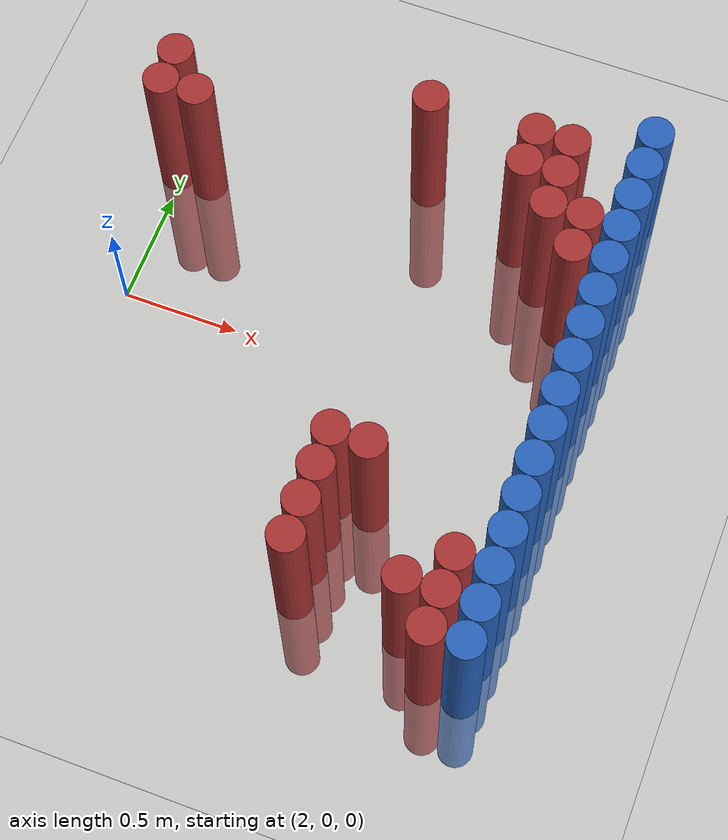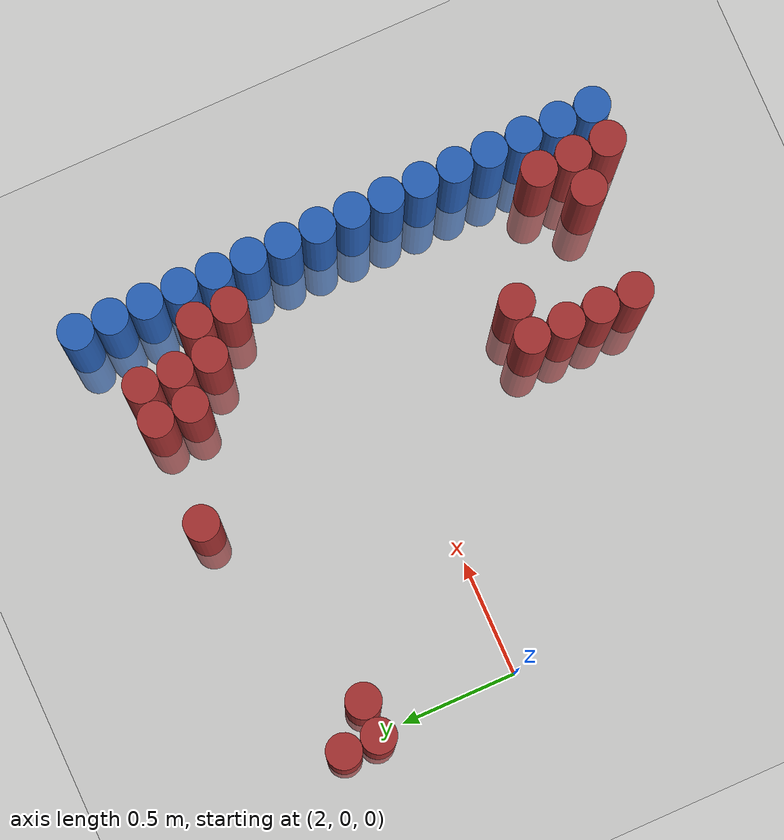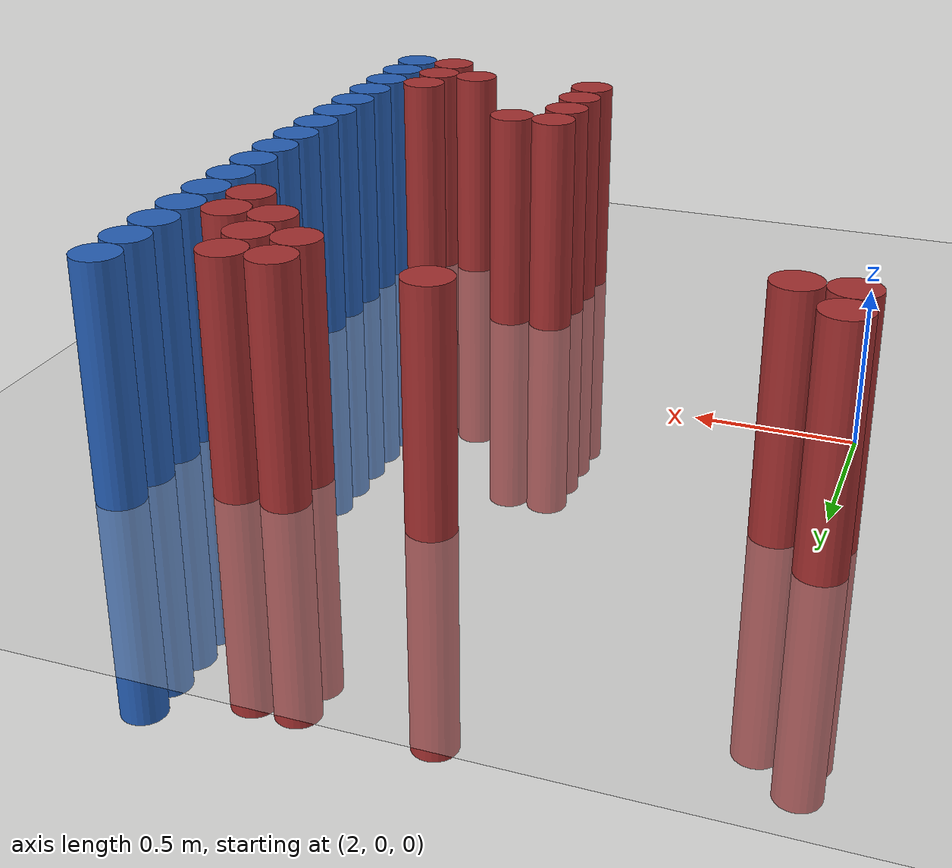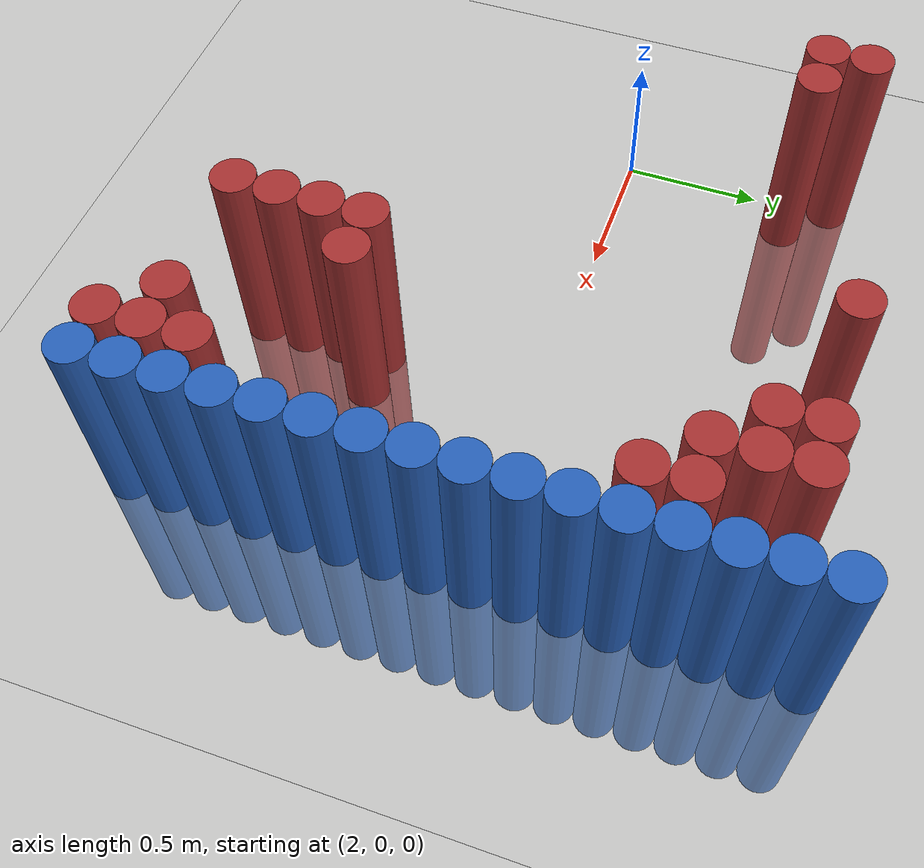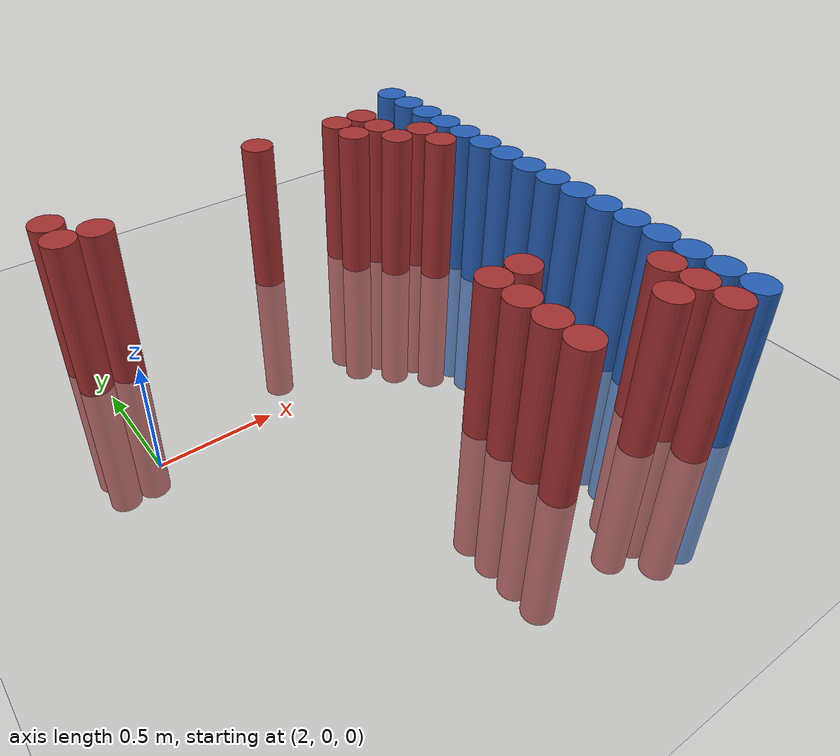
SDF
<sdf version="1.6">
 <world name="default">
  <model name="ground_plane">
   <static>1</static>
   <link name="link">
    <collision name="collision">
     <geometry><plane><normal>0 0 1</normal><size>100 100</size></plane></geometry>
     <surface><friction><ode><mu>100</mu><mu2>50</mu2></ode></friction></surface>
    </collision>
    <visual name="visual">
     <cast_shadows>0</cast_shadows>
     <geometry><plane><normal>0 0 1</normal><size>100 100</size></plane></geometry>
     <material>
      <script><uri>file://media/materials/scripts/gazebo.material</uri><name>Gazebo/Grey</name></script>
     </material>
    </visual>
   </link>
  </model>
  <model name="unit_cylinder_98">
   <static>1</static>
   <pose>3.925000 -1.175000 0.000000 0.000000 0.000000 0.000000</pose>
   <link name="link">
    <inertial>
     <mass>1</mass>
     <inertia><ixx>0.145833</ixx><ixy>0</ixy><ixz>0</ixz><iyy>0.145833</iyy><iyz>0</iyz><izz>0.125</izz></inertia>
    </inertial>
    <collision name="collision">
     <geometry><cylinder><radius>0.075000</radius><length>1.5</length></cylinder></geometry>
    </collision>
    <visual name="visual">
     <geometry><cylinder><radius>0.075000</radius><length>1.5</length></cylinder></geometry>
     <material>
      <ambient>0.152000 0.379000 0.720000 1</ambient>
      <diffuse>0.152000 0.379000 0.720000 1</diffuse>
     </material>
     <material>
      <script><name>Gazebo/Grey</name><uri>file://media/materials/scripts/gazebo.material</uri></script>
     </material>
    </visual>
   </link>
  </model>
  <model name="unit_cylinder_100">
   <static>1</static>
   <pose>3.925000 -1.025000 0.000000 0.000000 0.000000 0.000000</pose>
   <link name="link">
    <inertial>
     <mass>1</mass>
     <inertia><ixx>0.145833</ixx><ixy>0</ixy><ixz>0</ixz><iyy>0.145833</iyy><iyz>0</iyz><izz>0.125</izz></inertia>
    </inertial>
    <collision name="collision">
     <geometry><cylinder><radius>0.075000</radius><length>1.5</length></cylinder></geometry>
    </collision>
    <visual name="visual">
     <geometry><cylinder><radius>0.075000</radius><length>1.5</length></cylinder></geometry>
     <material>
      <ambient>0.152000 0.379000 0.720000 1</ambient>
      <diffuse>0.152000 0.379000 0.720000 1</diffuse>
     </material>
     <material>
      <script><name>Gazebo/Grey</name><uri>file://media/materials/scripts/gazebo.material</uri></script>
     </material>
    </visual>
   </link>
  </model>
  <model name="unit_cylinder_102">
   <static>1</static>
   <pose>3.925000 -0.875000 0.000000 0.000000 0.000000 0.000000</pose>
   <link name="link">
    <inertial>
     <mass>1</mass>
     <inertia><ixx>0.145833</ixx><ixy>0</ixy><ixz>0</ixz><iyy>0.145833</iyy><iyz>0</iyz><izz>0.125</izz></inertia>
    </inertial>
    <collision name="collision">
     <geometry><cylinder><radius>0.075000</radius><length>1.5</length></cylinder></geometry>
    </collision>
    <visual name="visual">
     <geometry><cylinder><radius>0.075000</radius><length>1.5</length></cylinder></geometry>
     <material>
      <ambient>0.152000 0.379000 0.720000 1</ambient>
      <diffuse>0.152000 0.379000 0.720000 1</diffuse>
     </material>
     <material>
      <script><name>Gazebo/Grey</name><uri>file://media/materials/scripts/gazebo.material</uri></script>
     </material>
    </visual>
   </link>
  </model>
  <model name="unit_cylinder_104">
   <static>1</static>
   <pose>3.925000 -0.725000 0.000000 0.000000 0.000000 0.000000</pose>
   <link name="link">
    <inertial>
     <mass>1</mass>
     <inertia><ixx>0.145833</ixx><ixy>0</ixy><ixz>0</ixz><iyy>0.145833</iyy><iyz>0</iyz><izz>0.125</izz></inertia>
    </inertial>
    <collision name="collision">
     <geometry><cylinder><radius>0.075000</radius><length>1.5</length></cylinder></geometry>
    </collision>
    <visual name="visual">
     <geometry><cylinder><radius>0.075000</radius><length>1.5</length></cylinder></geometry>
     <material>
      <ambient>0.152000 0.379000 0.720000 1</ambient>
      <diffuse>0.152000 0.379000 0.720000 1</diffuse>
     </material>
     <material>
      <script><name>Gazebo/Grey</name><uri>file://media/materials/scripts/gazebo.material</uri></script>
     </material>
    </visual>
   </link>
  </model>
  <model name="unit_cylinder_106">
   <static>1</static>
   <pose>3.925000 -0.575000 0.000000 0.000000 0.000000 0.000000</pose>
   <link name="link">
    <inertial>
     <mass>1</mass>
     <inertia><ixx>0.145833</ixx><ixy>0</ixy><ixz>0</ixz><iyy>0.145833</iyy><iyz>0</iyz><izz>0.125</izz></inertia>
    </inertial>
    <collision name="collision">
     <geometry><cylinder><radius>0.075000</radius><length>1.5</length></cylinder></geometry>
    </collision>
    <visual name="visual">
     <geometry><cylinder><radius>0.075000</radius><length>1.5</length></cylinder></geometry>
     <material>
      <ambient>0.152000 0.379000 0.720000 1</ambient>
      <diffuse>0.152000 0.379000 0.720000 1</diffuse>
     </material>
     <material>
      <script><name>Gazebo/Grey</name><uri>file://media/materials/scripts/gazebo.material</uri></script>
     </material>
    </visual>
   </link>
  </model>
  <model name="unit_cylinder_108">
   <static>1</static>
   <pose>3.925000 -0.425000 0.000000 0.000000 0.000000 0.000000</pose>
   <link name="link">
    <inertial>
     <mass>1</mass>
     <inertia><ixx>0.145833</ixx><ixy>0</ixy><ixz>0</ixz><iyy>0.145833</iyy><iyz>0</iyz><izz>0.125</izz></inertia>
    </inertial>
    <collision name="collision">
     <geometry><cylinder><radius>0.075000</radius><length>1.5</length></cylinder></geometry>
    </collision>
    <visual name="visual">
     <geometry><cylinder><radius>0.075000</radius><length>1.5</length></cylinder></geometry>
     <material>
      <ambient>0.152000 0.379000 0.720000 1</ambient>
      <diffuse>0.152000 0.379000 0.720000 1</diffuse>
     </material>
     <material>
      <script><name>Gazebo/Grey</name><uri>file://media/materials/scripts/gazebo.material</uri></script>
     </material>
    </visual>
   </link>
  </model>
  <model name="unit_cylinder_110">
   <static>1</static>
   <pose>3.925000 -0.275000 0.000000 0.000000 0.000000 0.000000</pose>
   <link name="link">
    <inertial>
     <mass>1</mass>
     <inertia><ixx>0.145833</ixx><ixy>0</ixy><ixz>0</ixz><iyy>0.145833</iyy><iyz>0</iyz><izz>0.125</izz></inertia>
    </inertial>
    <collision name="collision">
     <geometry><cylinder><radius>0.075000</radius><length>1.5</length></cylinder></geometry>
    </collision>
    <visual name="visual">
     <geometry><cylinder><radius>0.075000</radius><length>1.5</length></cylinder></geometry>
     <material>
      <ambient>0.152000 0.379000 0.720000 1</ambient>
      <diffuse>0.152000 0.379000 0.720000 1</diffuse>
     </material>
     <material>
      <script><name>Gazebo/Grey</name><uri>file://media/materials/scripts/gazebo.material</uri></script>
     </material>
    </visual>
   </link>
  </model>
  <model name="unit_cylinder_112">
   <static>1</static>
   <pose>3.925000 -0.125000 0.000000 0.000000 0.000000 0.000000</pose>
   <link name="link">
    <inertial>
     <mass>1</mass>
     <inertia><ixx>0.145833</ixx><ixy>0</ixy><ixz>0</ixz><iyy>0.145833</iyy><iyz>0</iyz><izz>0.125</izz></inertia>
    </inertial>
    <collision name="collision">
     <geometry><cylinder><radius>0.075000</radius><length>1.5</length></cylinder></geometry>
    </collision>
    <visual name="visual">
     <geometry><cylinder><radius>0.075000</radius><length>1.5</length></cylinder></geometry>
     <material>
      <ambient>0.152000 0.379000 0.720000 1</ambient>
      <diffuse>0.152000 0.379000 0.720000 1</diffuse>
     </material>
     <material>
      <script><name>Gazebo/Grey</name><uri>file://media/materials/scripts/gazebo.material</uri></script>
     </material>
    </visual>
   </link>
  </model>
  <model name="unit_cylinder_114">
   <static>1</static>
   <pose>3.925000 0.025000 0.000000 0.000000 0.000000 0.000000</pose>
   <link name="link">
    <inertial>
     <mass>1</mass>
     <inertia><ixx>0.145833</ixx><ixy>0</ixy><ixz>0</ixz><iyy>0.145833</iyy><iyz>0</iyz><izz>0.125</izz></inertia>
    </inertial>
    <collision name="collision">
     <geometry><cylinder><radius>0.075000</radius><length>1.5</length></cylinder></geometry>
    </collision>
    <visual name="visual">
     <geometry><cylinder><radius>0.075000</radius><length>1.5</length></cylinder></geometry>
     <material>
      <ambient>0.152000 0.379000 0.720000 1</ambient>
      <diffuse>0.152000 0.379000 0.720000 1</diffuse>
     </material>
     <material>
      <script><name>Gazebo/Grey</name><uri>file://media/materials/scripts/gazebo.material</uri></script>
     </material>
    </visual>
   </link>
  </model>
  <model name="unit_cylinder_116">
   <static>1</static>
   <pose>3.925000 0.175000 0.000000 0.000000 0.000000 0.000000</pose>
   <link name="link">
    <inertial>
     <mass>1</mass>
     <inertia><ixx>0.145833</ixx><ixy>0</ixy><ixz>0</ixz><iyy>0.145833</iyy><iyz>0</iyz><izz>0.125</izz></inertia>
    </inertial>
    <collision name="collision">
     <geometry><cylinder><radius>0.075000</radius><length>1.5</length></cylinder></geometry>
    </collision>
    <visual name="visual">
     <geometry><cylinder><radius>0.075000</radius><length>1.5</length></cylinder></geometry>
     <material>
      <ambient>0.152000 0.379000 0.720000 1</ambient>
      <diffuse>0.152000 0.379000 0.720000 1</diffuse>
     </material>
     <material>
      <script><name>Gazebo/Grey</name><uri>file://media/materials/scripts/gazebo.material</uri></script>
     </material>
    </visual>
   </link>
  </model>
  <model name="unit_cylinder_118">
   <static>1</static>
   <pose>3.925000 0.325000 0.000000 0.000000 0.000000 0.000000</pose>
   <link name="link">
    <inertial>
     <mass>1</mass>
     <inertia><ixx>0.145833</ixx><ixy>0</ixy><ixz>0</ixz><iyy>0.145833</iyy><iyz>0</iyz><izz>0.125</izz></inertia>
    </inertial>
    <collision name="collision">
     <geometry><cylinder><radius>0.075000</radius><length>1.5</length></cylinder></geometry>
    </collision>
    <visual name="visual">
     <geometry><cylinder><radius>0.075000</radius><length>1.5</length></cylinder></geometry>
     <material>
      <ambient>0.152000 0.379000 0.720000 1</ambient>
      <diffuse>0.152000 0.379000 0.720000 1</diffuse>
     </material>
     <material>
      <script><name>Gazebo/Grey</name><uri>file://media/materials/scripts/gazebo.material</uri></script>
     </material>
    </visual>
   </link>
  </model>
  <model name="unit_cylinder_120">
   <static>1</static>
   <pose>3.925000 0.475000 0.000000 0.000000 0.000000 0.000000</pose>
   <link name="link">
    <inertial>
     <mass>1</mass>
     <inertia><ixx>0.145833</ixx><ixy>0</ixy><ixz>0</ixz><iyy>0.145833</iyy><iyz>0</iyz><izz>0.125</izz></inertia>
    </inertial>
    <collision name="collision">
     <geometry><cylinder><radius>0.075000</radius><length>1.5</length></cylinder></geometry>
    </collision>
    <visual name="visual">
     <geometry><cylinder><radius>0.075000</radius><length>1.5</length></cylinder></geometry>
     <material>
      <ambient>0.152000 0.379000 0.720000 1</ambient>
      <diffuse>0.152000 0.379000 0.720000 1</diffuse>
     </material>
     <material>
      <script><name>Gazebo/Grey</name><uri>file://media/materials/scripts/gazebo.material</uri></script>
     </material>
    </visual>
   </link>
  </model>
  <model name="unit_cylinder_122">
   <static>1</static>
   <pose>3.925000 0.625000 0.000000 0.000000 0.000000 0.000000</pose>
   <link name="link">
    <inertial>
     <mass>1</mass>
     <inertia><ixx>0.145833</ixx><ixy>0</ixy><ixz>0</ixz><iyy>0.145833</iyy><iyz>0</iyz><izz>0.125</izz></inertia>
    </inertial>
    <collision name="collision">
     <geometry><cylinder><radius>0.075000</radius><length>1.5</length></cylinder></geometry>
    </collision>
    <visual name="visual">
     <geometry><cylinder><radius>0.075000</radius><length>1.5</length></cylinder></geometry>
     <material>
      <ambient>0.152000 0.379000 0.720000 1</ambient>
      <diffuse>0.152000 0.379000 0.720000 1</diffuse>
     </material>
     <material>
      <script><name>Gazebo/Grey</name><uri>file://media/materials/scripts/gazebo.material</uri></script>
     </material>
    </visual>
   </link>
  </model>
  <model name="unit_cylinder_124">
   <static>1</static>
   <pose>3.925000 0.775000 0.000000 0.000000 0.000000 0.000000</pose>
   <link name="link">
    <inertial>
     <mass>1</mass>
     <inertia><ixx>0.145833</ixx><ixy>0</ixy><ixz>0</ixz><iyy>0.145833</iyy><iyz>0</iyz><izz>0.125</izz></inertia>
    </inertial>
    <collision name="collision">
     <geometry><cylinder><radius>0.075000</radius><length>1.5</length></cylinder></geometry>
    </collision>
    <visual name="visual">
     <geometry><cylinder><radius>0.075000</radius><length>1.5</length></cylinder></geometry>
     <material>
      <ambient>0.152000 0.379000 0.720000 1</ambient>
      <diffuse>0.152000 0.379000 0.720000 1</diffuse>
     </material>
     <material>
      <script><name>Gazebo/Grey</name><uri>file://media/materials/scripts/gazebo.material</uri></script>
     </material>
    </visual>
   </link>
  </model>
  <model name="unit_cylinder_126">
   <static>1</static>
   <pose>3.925000 0.925000 0.000000 0.000000 0.000000 0.000000</pose>
   <link name="link">
    <inertial>
     <mass>1</mass>
     <inertia><ixx>0.145833</ixx><ixy>0</ixy><ixz>0</ixz><iyy>0.145833</iyy><iyz>0</iyz><izz>0.125</izz></inertia>
    </inertial>
    <collision name="collision">
     <geometry><cylinder><radius>0.075000</radius><length>1.5</length></cylinder></geometry>
    </collision>
    <visual name="visual">
     <geometry><cylinder><radius>0.075000</radius><length>1.5</length></cylinder></geometry>
     <material>
      <ambient>0.152000 0.379000 0.720000 1</ambient>
      <diffuse>0.152000 0.379000 0.720000 1</diffuse>
     </material>
     <material>
      <script><name>Gazebo/Grey</name><uri>file://media/materials/scripts/gazebo.material</uri></script>
     </material>
    </visual>
   </link>
  </model>
  <model name="unit_cylinder_128">
   <static>1</static>
   <pose>3.925000 1.075000 0.000000 0.000000 0.000000 0.000000</pose>
   <link name="link">
    <inertial>
     <mass>1</mass>
     <inertia><ixx>0.145833</ixx><ixy>0</ixy><ixz>0</ixz><iyy>0.145833</iyy><iyz>0</iyz><izz>0.125</izz></inertia>
    </inertial>
    <collision name="collision">
     <geometry><cylinder><radius>0.075000</radius><length>1.5</length></cylinder></geometry>
    </collision>
    <visual name="visual">
     <geometry><cylinder><radius>0.075000</radius><length>1.5</length></cylinder></geometry>
     <material>
      <ambient>0.152000 0.379000 0.720000 1</ambient>
      <diffuse>0.152000 0.379000 0.720000 1</diffuse>
     </material>
     <material>
      <script><name>Gazebo/Grey</name><uri>file://media/materials/scripts/gazebo.material</uri></script>
     </material>
    </visual>
   </link>
  </model>
  <model name="unit_cylinder_397">
   <static>1</static>
   <pose>1.975000 0.625000 0.000000 0.000000 0.000000 0.000000</pose>
   <link name="link">
    <inertial>
     <mass>1</mass>
     <inertia><ixx>0.145833</ixx><ixy>0</ixy><ixz>0</ixz><iyy>0.145833</iyy><iyz>0</iyz><izz>0.125</izz></inertia>
    </inertial>
    <collision name="collision">
     <geometry><cylinder><radius>0.075000</radius><length>1.5</length></cylinder></geometry>
    </collision>
    <visual name="visual">
     <geometry><cylinder><radius>0.075000</radius><length>1.5</length></cylinder></geometry>
     <material>
      <ambient>0.648000 0.192000 0.192000 1</ambient>
      <diffuse>0.648000 0.192000 0.192000 1</diffuse>
     </material>
     <material>
      <script><name>Gazebo/Grey</name><uri>file://media/materials/scripts/gazebo.material</uri></script>
     </material>
    </visual>
   </link>
  </model>
  <model name="unit_cylinder_398">
   <static>1</static>
   <pose>1.975000 0.775000 0.000000 0.000000 0.000000 0.000000</pose>
   <link name="link">
    <inertial>
     <mass>1</mass>
     <inertia><ixx>0.145833</ixx><ixy>0</ixy><ixz>0</ixz><iyy>0.145833</iyy><iyz>0</iyz><izz>0.125</izz></inertia>
    </inertial>
    <collision name="collision">
     <geometry><cylinder><radius>0.075000</radius><length>1.5</length></cylinder></geometry>
    </collision>
    <visual name="visual">
     <geometry><cylinder><radius>0.075000</radius><length>1.5</length></cylinder></geometry>
     <material>
      <ambient>0.648000 0.192000 0.192000 1</ambient>
      <diffuse>0.648000 0.192000 0.192000 1</diffuse>
     </material>
     <material>
      <script><name>Gazebo/Grey</name><uri>file://media/materials/scripts/gazebo.material</uri></script>
     </material>
    </visual>
   </link>
  </model>
  <model name="unit_cylinder_405">
   <static>1</static>
   <pose>2.125000 0.625000 0.000000 0.000000 0.000000 0.000000</pose>
   <link name="link">
    <inertial>
     <mass>1</mass>
     <inertia><ixx>0.145833</ixx><ixy>0</ixy><ixz>0</ixz><iyy>0.145833</iyy><iyz>0</iyz><izz>0.125</izz></inertia>
    </inertial>
    <collision name="collision">
     <geometry><cylinder><radius>0.075000</radius><length>1.5</length></cylinder></geometry>
    </collision>
    <visual name="visual">
     <geometry><cylinder><radius>0.075000</radius><length>1.5</length></cylinder></geometry>
     <material>
      <ambient>0.648000 0.192000 0.192000 1</ambient>
      <diffuse>0.648000 0.192000 0.192000 1</diffuse>
     </material>
     <material>
      <script><name>Gazebo/Grey</name><uri>file://media/materials/scripts/gazebo.material</uri></script>
     </material>
    </visual>
   </link>
  </model>
  <model name="unit_cylinder_422">
   <static>1</static>
   <pose>3.025000 0.925000 0.000000 0.000000 0.000000 0.000000</pose>
   <link name="link">
    <inertial>
     <mass>1</mass>
     <inertia><ixx>0.145833</ixx><ixy>0</ixy><ixz>0</ixz><iyy>0.145833</iyy><iyz>0</iyz><izz>0.125</izz></inertia>
    </inertial>
    <collision name="collision">
     <geometry><cylinder><radius>0.075000</radius><length>1.5</length></cylinder></geometry>
    </collision>
    <visual name="visual">
     <geometry><cylinder><radius>0.075000</radius><length>1.5</length></cylinder></geometry>
     <material>
      <ambient>0.648000 0.192000 0.192000 1</ambient>
      <diffuse>0.648000 0.192000 0.192000 1</diffuse>
     </material>
     <material>
      <script><name>Gazebo/Grey</name><uri>file://media/materials/scripts/gazebo.material</uri></script>
     </material>
    </visual>
   </link>
  </model>
  <model name="unit_cylinder_428">
   <static>1</static>
   <pose>3.175000 -1.025000 0.000000 0.000000 0.000000 0.000000</pose>
   <link name="link">
    <inertial>
     <mass>1</mass>
     <inertia><ixx>0.145833</ixx><ixy>0</ixy><ixz>0</ixz><iyy>0.145833</iyy><iyz>0</iyz><izz>0.125</izz></inertia>
    </inertial>
    <collision name="collision">
     <geometry><cylinder><radius>0.075000</radius><length>1.5</length></cylinder></geometry>
    </collision>
    <visual name="visual">
     <geometry><cylinder><radius>0.075000</radius><length>1.5</length></cylinder></geometry>
     <material>
      <ambient>0.648000 0.192000 0.192000 1</ambient>
      <diffuse>0.648000 0.192000 0.192000 1</diffuse>
     </material>
     <material>
      <script><name>Gazebo/Grey</name><uri>file://media/materials/scripts/gazebo.material</uri></script>
     </material>
    </visual>
   </link>
  </model>
  <model name="unit_cylinder_429">
   <static>1</static>
   <pose>3.175000 -0.875000 0.000000 0.000000 0.000000 0.000000</pose>
   <link name="link">
    <inertial>
     <mass>1</mass>
     <inertia><ixx>0.145833</ixx><ixy>0</ixy><ixz>0</ixz><iyy>0.145833</iyy><iyz>0</iyz><izz>0.125</izz></inertia>
    </inertial>
    <collision name="collision">
     <geometry><cylinder><radius>0.075000</radius><length>1.5</length></cylinder></geometry>
    </collision>
    <visual name="visual">
     <geometry><cylinder><radius>0.075000</radius><length>1.5</length></cylinder></geometry>
     <material>
      <ambient>0.648000 0.192000 0.192000 1</ambient>
      <diffuse>0.648000 0.192000 0.192000 1</diffuse>
     </material>
     <material>
      <script><name>Gazebo/Grey</name><uri>file://media/materials/scripts/gazebo.material</uri></script>
     </material>
    </visual>
   </link>
  </model>
  <model name="unit_cylinder_430">
   <static>1</static>
   <pose>3.175000 -0.725000 0.000000 0.000000 0.000000 0.000000</pose>
   <link name="link">
    <inertial>
     <mass>1</mass>
     <inertia><ixx>0.145833</ixx><ixy>0</ixy><ixz>0</ixz><iyy>0.145833</iyy><iyz>0</iyz><izz>0.125</izz></inertia>
    </inertial>
    <collision name="collision">
     <geometry><cylinder><radius>0.075000</radius><length>1.5</length></cylinder></geometry>
    </collision>
    <visual name="visual">
     <geometry><cylinder><radius>0.075000</radius><length>1.5</length></cylinder></geometry>
     <material>
      <ambient>0.648000 0.192000 0.192000 1</ambient>
      <diffuse>0.648000 0.192000 0.192000 1</diffuse>
     </material>
     <material>
      <script><name>Gazebo/Grey</name><uri>file://media/materials/scripts/gazebo.material</uri></script>
     </material>
    </visual>
   </link>
  </model>
  <model name="unit_cylinder_431">
   <static>1</static>
   <pose>3.175000 -0.575000 0.000000 0.000000 0.000000 0.000000</pose>
   <link name="link">
    <inertial>
     <mass>1</mass>
     <inertia><ixx>0.145833</ixx><ixy>0</ixy><ixz>0</ixz><iyy>0.145833</iyy><iyz>0</iyz><izz>0.125</izz></inertia>
    </inertial>
    <collision name="collision">
     <geometry><cylinder><radius>0.075000</radius><length>1.5</length></cylinder></geometry>
    </collision>
    <visual name="visual">
     <geometry><cylinder><radius>0.075000</radius><length>1.5</length></cylinder></geometry>
     <material>
      <ambient>0.648000 0.192000 0.192000 1</ambient>
      <diffuse>0.648000 0.192000 0.192000 1</diffuse>
     </material>
     <material>
      <script><name>Gazebo/Grey</name><uri>file://media/materials/scripts/gazebo.material</uri></script>
     </material>
    </visual>
   </link>
  </model>
  <model name="unit_cylinder_440">
   <static>1</static>
   <pose>3.325000 -0.575000 0.000000 0.000000 0.000000 0.000000</pose>
   <link name="link">
    <inertial>
     <mass>1</mass>
     <inertia><ixx>0.145833</ixx><ixy>0</ixy><ixz>0</ixz><iyy>0.145833</iyy><iyz>0</iyz><izz>0.125</izz></inertia>
    </inertial>
    <collision name="collision">
     <geometry><cylinder><radius>0.075000</radius><length>1.5</length></cylinder></geometry>
    </collision>
    <visual name="visual">
     <geometry><cylinder><radius>0.075000</radius><length>1.5</length></cylinder></geometry>
     <material>
      <ambient>0.648000 0.192000 0.192000 1</ambient>
      <diffuse>0.648000 0.192000 0.192000 1</diffuse>
     </material>
     <material>
      <script><name>Gazebo/Grey</name><uri>file://media/materials/scripts/gazebo.material</uri></script>
     </material>
    </visual>
   </link>
  </model>
  <model name="unit_cylinder_444">
   <static>1</static>
   <pose>3.475000 0.775000 0.000000 0.000000 0.000000 0.000000</pose>
   <link name="link">
    <inertial>
     <mass>1</mass>
     <inertia><ixx>0.145833</ixx><ixy>0</ixy><ixz>0</ixz><iyy>0.145833</iyy><iyz>0</iyz><izz>0.125</izz></inertia>
    </inertial>
    <collision name="collision">
     <geometry><cylinder><radius>0.075000</radius><length>1.5</length></cylinder></geometry>
    </collision>
    <visual name="visual">
     <geometry><cylinder><radius>0.075000</radius><length>1.5</length></cylinder></geometry>
     <material>
      <ambient>0.648000 0.192000 0.192000 1</ambient>
      <diffuse>0.648000 0.192000 0.192000 1</diffuse>
     </material>
     <material>
      <script><name>Gazebo/Grey</name><uri>file://media/materials/scripts/gazebo.material</uri></script>
     </material>
    </visual>
   </link>
  </model>
  <model name="unit_cylinder_445">
   <static>1</static>
   <pose>3.475000 0.925000 0.000000 0.000000 0.000000 0.000000</pose>
   <link name="link">
    <inertial>
     <mass>1</mass>
     <inertia><ixx>0.145833</ixx><ixy>0</ixy><ixz>0</ixz><iyy>0.145833</iyy><iyz>0</iyz><izz>0.125</izz></inertia>
    </inertial>
    <collision name="collision">
     <geometry><cylinder><radius>0.075000</radius><length>1.5</length></cylinder></geometry>
    </collision>
    <visual name="visual">
     <geometry><cylinder><radius>0.075000</radius><length>1.5</length></cylinder></geometry>
     <material>
      <ambient>0.648000 0.192000 0.192000 1</ambient>
      <diffuse>0.648000 0.192000 0.192000 1</diffuse>
     </material>
     <material>
      <script><name>Gazebo/Grey</name><uri>file://media/materials/scripts/gazebo.material</uri></script>
     </material>
    </visual>
   </link>
  </model>
  <model name="unit_cylinder_448">
   <static>1</static>
   <pose>3.625000 -1.025000 0.000000 0.000000 0.000000 0.000000</pose>
   <link name="link">
    <inertial>
     <mass>1</mass>
     <inertia><ixx>0.145833</ixx><ixy>0</ixy><ixz>0</ixz><iyy>0.145833</iyy><iyz>0</iyz><izz>0.125</izz></inertia>
    </inertial>
    <collision name="collision">
     <geometry><cylinder><radius>0.075000</radius><length>1.5</length></cylinder></geometry>
    </collision>
    <visual name="visual">
     <geometry><cylinder><radius>0.075000</radius><length>1.5</length></cylinder></geometry>
     <material>
      <ambient>0.648000 0.192000 0.192000 1</ambient>
      <diffuse>0.648000 0.192000 0.192000 1</diffuse>
     </material>
     <material>
      <script><name>Gazebo/Grey</name><uri>file://media/materials/scripts/gazebo.material</uri></script>
     </material>
    </visual>
   </link>
  </model>
  <model name="unit_cylinder_449">
   <static>1</static>
   <pose>3.625000 0.625000 0.000000 0.000000 0.000000 0.000000</pose>
   <link name="link">
    <inertial>
     <mass>1</mass>
     <inertia><ixx>0.145833</ixx><ixy>0</ixy><ixz>0</ixz><iyy>0.145833</iyy><iyz>0</iyz><izz>0.125</izz></inertia>
    </inertial>
    <collision name="collision">
     <geometry><cylinder><radius>0.075000</radius><length>1.5</length></cylinder></geometry>
    </collision>
    <visual name="visual">
     <geometry><cylinder><radius>0.075000</radius><length>1.5</length></cylinder></geometry>
     <material>
      <ambient>0.648000 0.192000 0.192000 1</ambient>
      <diffuse>0.648000 0.192000 0.192000 1</diffuse>
     </material>
     <material>
      <script><name>Gazebo/Grey</name><uri>file://media/materials/scripts/gazebo.material</uri></script>
     </material>
    </visual>
   </link>
  </model>
  <model name="unit_cylinder_450">
   <static>1</static>
   <pose>3.625000 0.775000 0.000000 0.000000 0.000000 0.000000</pose>
   <link name="link">
    <inertial>
     <mass>1</mass>
     <inertia><ixx>0.145833</ixx><ixy>0</ixy><ixz>0</ixz><iyy>0.145833</iyy><iyz>0</iyz><izz>0.125</izz></inertia>
    </inertial>
    <collision name="collision">
     <geometry><cylinder><radius>0.075000</radius><length>1.5</length></cylinder></geometry>
    </collision>
    <visual name="visual">
     <geometry><cylinder><radius>0.075000</radius><length>1.5</length></cylinder></geometry>
     <material>
      <ambient>0.648000 0.192000 0.192000 1</ambient>
      <diffuse>0.648000 0.192000 0.192000 1</diffuse>
     </material>
     <material>
      <script><name>Gazebo/Grey</name><uri>file://media/materials/scripts/gazebo.material</uri></script>
     </material>
    </visual>
   </link>
  </model>
  <model name="unit_cylinder_451">
   <static>1</static>
   <pose>3.625000 0.925000 0.000000 0.000000 0.000000 0.000000</pose>
   <link name="link">
    <inertial>
     <mass>1</mass>
     <inertia><ixx>0.145833</ixx><ixy>0</ixy><ixz>0</ixz><iyy>0.145833</iyy><iyz>0</iyz><izz>0.125</izz></inertia>
    </inertial>
    <collision name="collision">
     <geometry><cylinder><radius>0.075000</radius><length>1.5</length></cylinder></geometry>
    </collision>
    <visual name="visual">
     <geometry><cylinder><radius>0.075000</radius><length>1.5</length></cylinder></geometry>
     <material>
      <ambient>0.648000 0.192000 0.192000 1</ambient>
      <diffuse>0.648000 0.192000 0.192000 1</diffuse>
     </material>
     <material>
      <script><name>Gazebo/Grey</name><uri>file://media/materials/scripts/gazebo.material</uri></script>
     </material>
    </visual>
   </link>
  </model>
  <model name="unit_cylinder_457">
   <static>1</static>
   <pose>3.775000 -1.175000 0.000000 0.000000 0.000000 0.000000</pose>
   <link name="link">
    <inertial>
     <mass>1</mass>
     <inertia><ixx>0.145833</ixx><ixy>0</ixy><ixz>0</ixz><iyy>0.145833</iyy><iyz>0</iyz><izz>0.125</izz></inertia>
    </inertial>
    <collision name="collision">
     <geometry><cylinder><radius>0.075000</radius><length>1.5</length></cylinder></geometry>
    </collision>
    <visual name="visual">
     <geometry><cylinder><radius>0.075000</radius><length>1.5</length></cylinder></geometry>
     <material>
      <ambient>0.648000 0.192000 0.192000 1</ambient>
      <diffuse>0.648000 0.192000 0.192000 1</diffuse>
     </material>
     <material>
      <script><name>Gazebo/Grey</name><uri>file://media/materials/scripts/gazebo.material</uri></script>
     </material>
    </visual>
   </link>
  </model>
  <model name="unit_cylinder_458">
   <static>1</static>
   <pose>3.775000 -1.025000 0.000000 0.000000 0.000000 0.000000</pose>
   <link name="link">
    <inertial>
     <mass>1</mass>
     <inertia><ixx>0.145833</ixx><ixy>0</ixy><ixz>0</ixz><iyy>0.145833</iyy><iyz>0</iyz><izz>0.125</izz></inertia>
    </inertial>
    <collision name="collision">
     <geometry><cylinder><radius>0.075000</radius><length>1.5</length></cylinder></geometry>
    </collision>
    <visual name="visual">
     <geometry><cylinder><radius>0.075000</radius><length>1.5</length></cylinder></geometry>
     <material>
      <ambient>0.648000 0.192000 0.192000 1</ambient>
      <diffuse>0.648000 0.192000 0.192000 1</diffuse>
     </material>
     <material>
      <script><name>Gazebo/Grey</name><uri>file://media/materials/scripts/gazebo.material</uri></script>
     </material>
    </visual>
   </link>
  </model>
  <model name="unit_cylinder_459">
   <static>1</static>
   <pose>3.775000 -0.875000 0.000000 0.000000 0.000000 0.000000</pose>
   <link name="link">
    <inertial>
     <mass>1</mass>
     <inertia><ixx>0.145833</ixx><ixy>0</ixy><ixz>0</ixz><iyy>0.145833</iyy><iyz>0</iyz><izz>0.125</izz></inertia>
    </inertial>
    <collision name="collision">
     <geometry><cylinder><radius>0.075000</radius><length>1.5</length></cylinder></geometry>
    </collision>
    <visual name="visual">
     <geometry><cylinder><radius>0.075000</radius><length>1.5</length></cylinder></geometry>
     <material>
      <ambient>0.648000 0.192000 0.192000 1</ambient>
      <diffuse>0.648000 0.192000 0.192000 1</diffuse>
     </material>
     <material>
      <script><name>Gazebo/Grey</name><uri>file://media/materials/scripts/gazebo.material</uri></script>
     </material>
    </visual>
   </link>
  </model>
  <model name="unit_cylinder_460">
   <static>1</static>
   <pose>3.775000 0.475000 0.000000 0.000000 0.000000 0.000000</pose>
   <link name="link">
    <inertial>
     <mass>1</mass>
     <inertia><ixx>0.145833</ixx><ixy>0</ixy><ixz>0</ixz><iyy>0.145833</iyy><iyz>0</iyz><izz>0.125</izz></inertia>
    </inertial>
    <collision name="collision">
     <geometry><cylinder><radius>0.075000</radius><length>1.5</length></cylinder></geometry>
    </collision>
    <visual name="visual">
     <geometry><cylinder><radius>0.075000</radius><length>1.5</length></cylinder></geometry>
     <material>
      <ambient>0.648000 0.192000 0.192000 1</ambient>
      <diffuse>0.648000 0.192000 0.192000 1</diffuse>
     </material>
     <material>
      <script><name>Gazebo/Grey</name><uri>file://media/materials/scripts/gazebo.material</uri></script>
     </material>
    </visual>
   </link>
  </model>
  <model name="unit_cylinder_461">
   <static>1</static>
   <pose>3.775000 0.625000 0.000000 0.000000 0.000000 0.000000</pose>
   <link name="link">
    <inertial>
     <mass>1</mass>
     <inertia><ixx>0.145833</ixx><ixy>0</ixy><ixz>0</ixz><iyy>0.145833</iyy><iyz>0</iyz><izz>0.125</izz></inertia>
    </inertial>
    <collision name="collision">
     <geometry><cylinder><radius>0.075000</radius><length>1.5</length></cylinder></geometry>
    </collision>
    <visual name="visual">
     <geometry><cylinder><radius>0.075000</radius><length>1.5</length></cylinder></geometry>
     <material>
      <ambient>0.648000 0.192000 0.192000 1</ambient>
      <diffuse>0.648000 0.192000 0.192000 1</diffuse>
     </material>
     <material>
      <script><name>Gazebo/Grey</name><uri>file://media/materials/scripts/gazebo.material</uri></script>
     </material>
    </visual>
   </link>
  </model>
  <model name="unit_cylinder_474">
   <static>1</static>
   <pose>3.925000 -1.175000 0.000000 0.000000 0.000000 0.000000</pose>
   <link name="link">
    <inertial>
     <mass>1</mass>
     <inertia><ixx>0.145833</ixx><ixy>0</ixy><ixz>0</ixz><iyy>0.145833</iyy><iyz>0</iyz><izz>0.125</izz></inertia>
    </inertial>
    <collision name="collision">
     <geometry><cylinder><radius>0.075000</radius><length>1.5</length></cylinder></geometry>
    </collision>
    <visual name="visual">
     <geometry><cylinder><radius>0.075000</radius><length>1.5</length></cylinder></geometry>
     <material>
      <ambient>0.152000 0.379000 0.720000 1</ambient>
      <diffuse>0.152000 0.379000 0.720000 1</diffuse>
     </material>
     <material>
      <script><name>Gazebo/Grey</name><uri>file://media/materials/scripts/gazebo.material</uri></script>
     </material>
    </visual>
   </link>
  </model>
  <model name="unit_cylinder_475">
   <static>1</static>
   <pose>3.925000 -1.025000 0.000000 0.000000 0.000000 0.000000</pose>
   <link name="link">
    <inertial>
     <mass>1</mass>
     <inertia><ixx>0.145833</ixx><ixy>0</ixy><ixz>0</ixz><iyy>0.145833</iyy><iyz>0</iyz><izz>0.125</izz></inertia>
    </inertial>
    <collision name="collision">
     <geometry><cylinder><radius>0.075000</radius><length>1.5</length></cylinder></geometry>
    </collision>
    <visual name="visual">
     <geometry><cylinder><radius>0.075000</radius><length>1.5</length></cylinder></geometry>
     <material>
      <ambient>0.152000 0.379000 0.720000 1</ambient>
      <diffuse>0.152000 0.379000 0.720000 1</diffuse>
     </material>
     <material>
      <script><name>Gazebo/Grey</name><uri>file://media/materials/scripts/gazebo.material</uri></script>
     </material>
    </visual>
   </link>
  </model>
  <model name="unit_cylinder_476">
   <static>1</static>
   <pose>3.925000 -0.875000 0.000000 0.000000 0.000000 0.000000</pose>
   <link name="link">
    <inertial>
     <mass>1</mass>
     <inertia><ixx>0.145833</ixx><ixy>0</ixy><ixz>0</ixz><iyy>0.145833</iyy><iyz>0</iyz><izz>0.125</izz></inertia>
    </inertial>
    <collision name="collision">
     <geometry><cylinder><radius>0.075000</radius><length>1.5</length></cylinder></geometry>
    </collision>
    <visual name="visual">
     <geometry><cylinder><radius>0.075000</radius><length>1.5</length></cylinder></geometry>
     <material>
      <ambient>0.152000 0.379000 0.720000 1</ambient>
      <diffuse>0.152000 0.379000 0.720000 1</diffuse>
     </material>
     <material>
      <script><name>Gazebo/Grey</name><uri>file://media/materials/scripts/gazebo.material</uri></script>
     </material>
    </visual>
   </link>
  </model>
  <model name="unit_cylinder_477">
   <static>1</static>
   <pose>3.925000 -0.725000 0.000000 0.000000 0.000000 0.000000</pose>
   <link name="link">
    <inertial>
     <mass>1</mass>
     <inertia><ixx>0.145833</ixx><ixy>0</ixy><ixz>0</ixz><iyy>0.145833</iyy><iyz>0</iyz><izz>0.125</izz></inertia>
    </inertial>
    <collision name="collision">
     <geometry><cylinder><radius>0.075000</radius><length>1.5</length></cylinder></geometry>
    </collision>
    <visual name="visual">
     <geometry><cylinder><radius>0.075000</radius><length>1.5</length></cylinder></geometry>
     <material>
      <ambient>0.152000 0.379000 0.720000 1</ambient>
      <diffuse>0.152000 0.379000 0.720000 1</diffuse>
     </material>
     <material>
      <script><name>Gazebo/Grey</name><uri>file://media/materials/scripts/gazebo.material</uri></script>
     </material>
    </visual>
   </link>
  </model>
  <model name="unit_cylinder_478">
   <static>1</static>
   <pose>3.925000 -0.575000 0.000000 0.000000 0.000000 0.000000</pose>
   <link name="link">
    <inertial>
     <mass>1</mass>
     <inertia><ixx>0.145833</ixx><ixy>0</ixy><ixz>0</ixz><iyy>0.145833</iyy><iyz>0</iyz><izz>0.125</izz></inertia>
    </inertial>
    <collision name="collision">
     <geometry><cylinder><radius>0.075000</radius><length>1.5</length></cylinder></geometry>
    </collision>
    <visual name="visual">
     <geometry><cylinder><radius>0.075000</radius><length>1.5</length></cylinder></geometry>
     <material>
      <ambient>0.152000 0.379000 0.720000 1</ambient>
      <diffuse>0.152000 0.379000 0.720000 1</diffuse>
     </material>
     <material>
      <script><name>Gazebo/Grey</name><uri>file://media/materials/scripts/gazebo.material</uri></script>
     </material>
    </visual>
   </link>
  </model>
  <model name="unit_cylinder_479">
   <static>1</static>
   <pose>3.925000 -0.425000 0.000000 0.000000 0.000000 0.000000</pose>
   <link name="link">
    <inertial>
     <mass>1</mass>
     <inertia><ixx>0.145833</ixx><ixy>0</ixy><ixz>0</ixz><iyy>0.145833</iyy><iyz>0</iyz><izz>0.125</izz></inertia>
    </inertial>
    <collision name="collision">
     <geometry><cylinder><radius>0.075000</radius><length>1.5</length></cylinder></geometry>
    </collision>
    <visual name="visual">
     <geometry><cylinder><radius>0.075000</radius><length>1.5</length></cylinder></geometry>
     <material>
      <ambient>0.152000 0.379000 0.720000 1</ambient>
      <diffuse>0.152000 0.379000 0.720000 1</diffuse>
     </material>
     <material>
      <script><name>Gazebo/Grey</name><uri>file://media/materials/scripts/gazebo.material</uri></script>
     </material>
    </visual>
   </link>
  </model>
  <model name="unit_cylinder_480">
   <static>1</static>
   <pose>3.925000 -0.275000 0.000000 0.000000 0.000000 0.000000</pose>
   <link name="link">
    <inertial>
     <mass>1</mass>
     <inertia><ixx>0.145833</ixx><ixy>0</ixy><ixz>0</ixz><iyy>0.145833</iyy><iyz>0</iyz><izz>0.125</izz></inertia>
    </inertial>
    <collision name="collision">
     <geometry><cylinder><radius>0.075000</radius><length>1.5</length></cylinder></geometry>
    </collision>
    <visual name="visual">
     <geometry><cylinder><radius>0.075000</radius><length>1.5</length></cylinder></geometry>
     <material>
      <ambient>0.152000 0.379000 0.720000 1</ambient>
      <diffuse>0.152000 0.379000 0.720000 1</diffuse>
     </material>
     <material>
      <script><name>Gazebo/Grey</name><uri>file://media/materials/scripts/gazebo.material</uri></script>
     </material>
    </visual>
   </link>
  </model>
  <model name="unit_cylinder_481">
   <static>1</static>
   <pose>3.925000 -0.125000 0.000000 0.000000 0.000000 0.000000</pose>
   <link name="link">
    <inertial>
     <mass>1</mass>
     <inertia><ixx>0.145833</ixx><ixy>0</ixy><ixz>0</ixz><iyy>0.145833</iyy><iyz>0</iyz><izz>0.125</izz></inertia>
    </inertial>
    <collision name="collision">
     <geometry><cylinder><radius>0.075000</radius><length>1.5</length></cylinder></geometry>
    </collision>
    <visual name="visual">
     <geometry><cylinder><radius>0.075000</radius><length>1.5</length></cylinder></geometry>
     <material>
      <ambient>0.152000 0.379000 0.720000 1</ambient>
      <diffuse>0.152000 0.379000 0.720000 1</diffuse>
     </material>
     <material>
      <script><name>Gazebo/Grey</name><uri>file://media/materials/scripts/gazebo.material</uri></script>
     </material>
    </visual>
   </link>
  </model>
  <model name="unit_cylinder_482">
   <static>1</static>
   <pose>3.925000 0.025000 0.000000 0.000000 0.000000 0.000000</pose>
   <link name="link">
    <inertial>
     <mass>1</mass>
     <inertia><ixx>0.145833</ixx><ixy>0</ixy><ixz>0</ixz><iyy>0.145833</iyy><iyz>0</iyz><izz>0.125</izz></inertia>
    </inertial>
    <collision name="collision">
     <geometry><cylinder><radius>0.075000</radius><length>1.5</length></cylinder></geometry>
    </collision>
    <visual name="visual">
     <geometry><cylinder><radius>0.075000</radius><length>1.5</length></cylinder></geometry>
     <material>
      <ambient>0.152000 0.379000 0.720000 1</ambient>
      <diffuse>0.152000 0.379000 0.720000 1</diffuse>
     </material>
     <material>
      <script><name>Gazebo/Grey</name><uri>file://media/materials/scripts/gazebo.material</uri></script>
     </material>
    </visual>
   </link>
  </model>
  <model name="unit_cylinder_483">
   <static>1</static>
   <pose>3.925000 0.175000 0.000000 0.000000 0.000000 0.000000</pose>
   <link name="link">
    <inertial>
     <mass>1</mass>
     <inertia><ixx>0.145833</ixx><ixy>0</ixy><ixz>0</ixz><iyy>0.145833</iyy><iyz>0</iyz><izz>0.125</izz></inertia>
    </inertial>
    <collision name="collision">
     <geometry><cylinder><radius>0.075000</radius><length>1.5</length></cylinder></geometry>
    </collision>
    <visual name="visual">
     <geometry><cylinder><radius>0.075000</radius><length>1.5</length></cylinder></geometry>
     <material>
      <ambient>0.152000 0.379000 0.720000 1</ambient>
      <diffuse>0.152000 0.379000 0.720000 1</diffuse>
     </material>
     <material>
      <script><name>Gazebo/Grey</name><uri>file://media/materials/scripts/gazebo.material</uri></script>
     </material>
    </visual>
   </link>
  </model>
  <model name="unit_cylinder_484">
   <static>1</static>
   <pose>3.925000 0.325000 0.000000 0.000000 0.000000 0.000000</pose>
   <link name="link">
    <inertial>
     <mass>1</mass>
     <inertia><ixx>0.145833</ixx><ixy>0</ixy><ixz>0</ixz><iyy>0.145833</iyy><iyz>0</iyz><izz>0.125</izz></inertia>
    </inertial>
    <collision name="collision">
     <geometry><cylinder><radius>0.075000</radius><length>1.5</length></cylinder></geometry>
    </collision>
    <visual name="visual">
     <geometry><cylinder><radius>0.075000</radius><length>1.5</length></cylinder></geometry>
     <material>
      <ambient>0.152000 0.379000 0.720000 1</ambient>
      <diffuse>0.152000 0.379000 0.720000 1</diffuse>
     </material>
     <material>
      <script><name>Gazebo/Grey</name><uri>file://media/materials/scripts/gazebo.material</uri></script>
     </material>
    </visual>
   </link>
  </model>
  <model name="unit_cylinder_485">
   <static>1</static>
   <pose>3.925000 0.475000 0.000000 0.000000 0.000000 0.000000</pose>
   <link name="link">
    <inertial>
     <mass>1</mass>
     <inertia><ixx>0.145833</ixx><ixy>0</ixy><ixz>0</ixz><iyy>0.145833</iyy><iyz>0</iyz><izz>0.125</izz></inertia>
    </inertial>
    <collision name="collision">
     <geometry><cylinder><radius>0.075000</radius><length>1.5</length></cylinder></geometry>
    </collision>
    <visual name="visual">
     <geometry><cylinder><radius>0.075000</radius><length>1.5</length></cylinder></geometry>
     <material>
      <ambient>0.152000 0.379000 0.720000 1</ambient>
      <diffuse>0.152000 0.379000 0.720000 1</diffuse>
     </material>
     <material>
      <script><name>Gazebo/Grey</name><uri>file://media/materials/scripts/gazebo.material</uri></script>
     </material>
    </visual>
   </link>
  </model>
  <model name="unit_cylinder_486">
   <static>1</static>
   <pose>3.925000 0.625000 0.000000 0.000000 0.000000 0.000000</pose>
   <link name="link">
    <inertial>
     <mass>1</mass>
     <inertia><ixx>0.145833</ixx><ixy>0</ixy><ixz>0</ixz><iyy>0.145833</iyy><iyz>0</iyz><izz>0.125</izz></inertia>
    </inertial>
    <collision name="collision">
     <geometry><cylinder><radius>0.075000</radius><length>1.5</length></cylinder></geometry>
    </collision>
    <visual name="visual">
     <geometry><cylinder><radius>0.075000</radius><length>1.5</length></cylinder></geometry>
     <material>
      <ambient>0.152000 0.379000 0.720000 1</ambient>
      <diffuse>0.152000 0.379000 0.720000 1</diffuse>
     </material>
     <material>
      <script><name>Gazebo/Grey</name><uri>file://media/materials/scripts/gazebo.material</uri></script>
     </material>
    </visual>
   </link>
  </model>
  <model name="unit_cylinder_487">
   <static>1</static>
   <pose>3.925000 0.775000 0.000000 0.000000 0.000000 0.000000</pose>
   <link name="link">
    <inertial>
     <mass>1</mass>
     <inertia><ixx>0.145833</ixx><ixy>0</ixy><ixz>0</ixz><iyy>0.145833</iyy><iyz>0</iyz><izz>0.125</izz></inertia>
    </inertial>
    <collision name="collision">
     <geometry><cylinder><radius>0.075000</radius><length>1.5</length></cylinder></geometry>
    </collision>
    <visual name="visual">
     <geometry><cylinder><radius>0.075000</radius><length>1.5</length></cylinder></geometry>
     <material>
      <ambient>0.152000 0.379000 0.720000 1</ambient>
      <diffuse>0.152000 0.379000 0.720000 1</diffuse>
     </material>
     <material>
      <script><name>Gazebo/Grey</name><uri>file://media/materials/scripts/gazebo.material</uri></script>
     </material>
    </visual>
   </link>
  </model>
  <model name="unit_cylinder_488">
   <static>1</static>
   <pose>3.925000 0.925000 0.000000 0.000000 0.000000 0.000000</pose>
   <link name="link">
    <inertial>
     <mass>1</mass>
     <inertia><ixx>0.145833</ixx><ixy>0</ixy><ixz>0</ixz><iyy>0.145833</iyy><iyz>0</iyz><izz>0.125</izz></inertia>
    </inertial>
    <collision name="collision">
     <geometry><cylinder><radius>0.075000</radius><length>1.5</length></cylinder></geometry>
    </collision>
    <visual name="visual">
     <geometry><cylinder><radius>0.075000</radius><length>1.5</length></cylinder></geometry>
     <material>
      <ambient>0.152000 0.379000 0.720000 1</ambient>
      <diffuse>0.152000 0.379000 0.720000 1</diffuse>
     </material>
     <material>
      <script><name>Gazebo/Grey</name><uri>file://media/materials/scripts/gazebo.material</uri></script>
     </material>
    </visual>
   </link>
  </model>
 </world>
</sdf>
